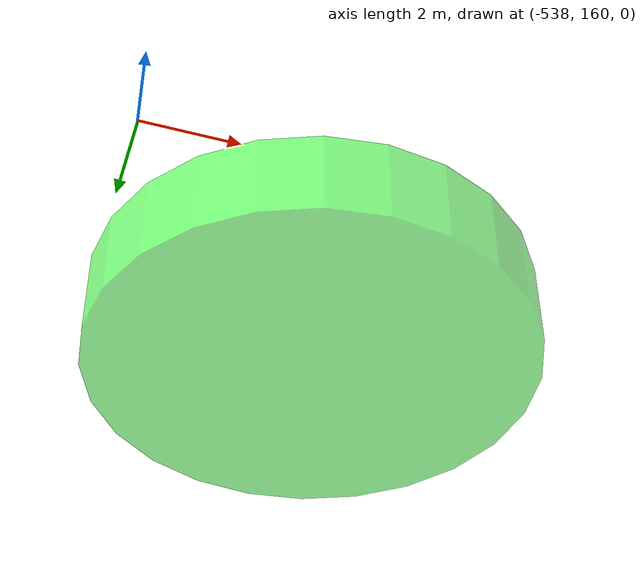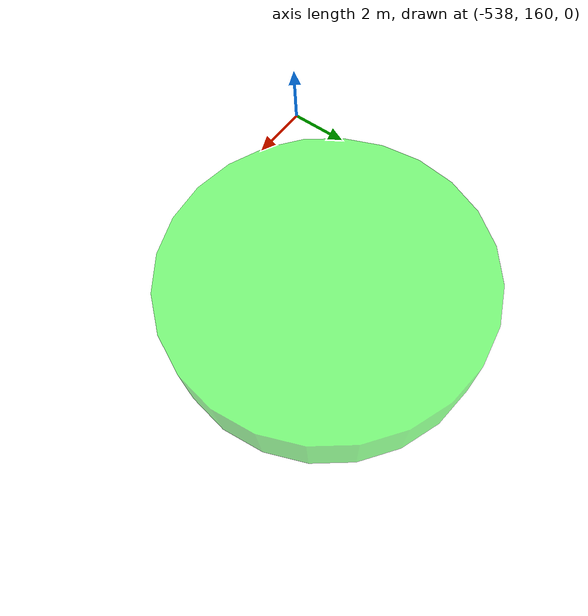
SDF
<?xml version="1.0"?>
<!-- Autogenerated file by src/autpilot/autopilot/add_markers.py to visualize checkpoints -->
<sdf version="1.9">
<model name="marker_cylinder">
    <pose>-533 165.0 0.0 0 0 0</pose>
    <static>true</static>
    <link name="link">
    <visual name="visual">
        <geometry>
        <cylinder>
            <radius>5.0</radius>
            <length>2.0</length>
        </cylinder>
        </geometry>
        <material>
        <ambient>0 1 0 0.5</ambient>
        <diffuse>0 1 0 0.5</diffuse>
        </material>
    </visual>
    </link>
</model>
</sdf>
